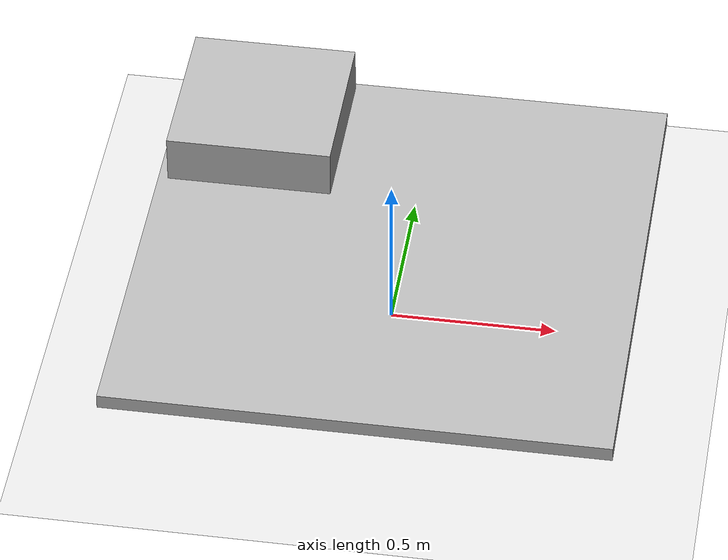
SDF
<sdf version='1.4'>
  <world name='GrannyAnnie'>
    <gravity>0 0 0</gravity>
    <light name='sun' type='directional'>
      <cast_shadows>1</cast_shadows>
      <pose>0 0 10 0 -0 0</pose>
      <diffuse>0.8 0.8 0.8 1</diffuse>
      <specular>0.2 0.2 0.2 1</specular>
      <attenuation>
        <range>1000</range>
        <constant>0.9</constant>
        <linear>0.01</linear>
        <quadratic>0.001</quadratic>
      </attenuation>
      <direction>-0.5 0.1 -0.9</direction>
    </light>
    <model name='ground_plane'>
      <static>1</static>
      <link name='link'>
        <collision name='collision'>
          <geometry>
            <plane>
              <normal>0 0 1</normal>
              <size>100 100</size>
            </plane>
          </geometry>
          <surface>
            <friction>
              <ode>
                <mu>100</mu>
                <mu2>50</mu2>
              </ode>
            </friction>
            <bounce/>
            <contact>
              <ode/>
            </contact>
          </surface>
          <max_contacts>10</max_contacts>
        </collision>
        <visual name='visual'>
          <cast_shadows>0</cast_shadows>
          <geometry>
            <plane>
              <normal>0 0 1</normal>
              <size>100 100</size>
            </plane>
          </geometry>
          <material>
            <script>
              <uri>file://media/materials/scripts/gazebo.material</uri>
              <name>Gazebo/Grey</name>
            </script>
          </material>
        </visual>
        <velocity_decay>
          <linear>0</linear>
          <angular>0</angular>
        </velocity_decay>
        <self_collide>0</self_collide>
        <kinematic>0</kinematic>
        <gravity>1</gravity>
      </link>
    </model>

    <physics type="ode">
      <real_time_update_rate>1000.0</real_time_update_rate>
      <max_step_size>0.001</max_step_size>
      <real_time_factor>1</real_time_factor>
      <ode>
        <solver>
          <type>quick</type>
          <iters>150</iters>
          <precon_iters>0</precon_iters>
          <sor>1.400000</sor>
          <use_dynamic_moi_rescaling>1</use_dynamic_moi_rescaling>
        </solver>
        <constraints>
          <cfm>0.00001</cfm>
          <erp>0.2</erp>
          <contact_max_correcting_vel>2000.000000</contact_max_correcting_vel>
          <contact_surface_layer>0.01000</contact_surface_layer>
        </constraints>
      </ode>
    </physics>

    <scene>
      <ambient>0.4 0.4 0.4 1</ambient>
      <background>0.7 0.7 0.7 1</background>
      <shadows>1</shadows>
    </scene>

    <gui fullscreen='0'>
      <camera name='user_camera'>
        <pose>2.81917 0.01727 23.6745 -5.7e-05 1.5698 1.56245</pose>
        <view_controller>orbit</view_controller>
      </camera>
    </gui>

    <include> <!-- Add your custom model -->
      <uri>model://desk_model</uri>
      <name>desk_model</name>
      <pose>0 0 0 0 0 0</pose>
    </include>

    <spherical_coordinates>
      <surface_model>EARTH_WGS84</surface_model>
      <latitude_deg>0</latitude_deg>
      <longitude_deg>0</longitude_deg>
      <elevation>0</elevation>
      <heading_deg>0</heading_deg>
    </spherical_coordinates>
  </world>
</sdf>

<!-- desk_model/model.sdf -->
<sdf version="1.6">
  <model name="Desk Model">
    <static>true</static>
    <link name="desk_link">
      <collision name="desk_collision">
        <geometry>
          <box>
            <size>1.5 1.5 0.1</size>
          </box>
        </geometry>
        <pose>0 0 0.217 0 0 0</pose>
      </collision>
      <collision name="object_collision">
        <geometry>
          <box>
            <size>0.5 0.5 0.2</size>
          </box>
        </geometry>
        <pose>-0.47 0.47 0.314 0 0 0</pose>
      </collision>
      <visual name="head_visual">
        <pose>0 0 0 0 0 0</pose>
        <geometry>
          <mesh>
            <scale>1 1 0.5 </scale>
            <uri>model://desk_model/meshes/desk.dae</uri>
          </mesh>
        </geometry>
      </visual>
    </link>
  </model>
</sdf>
